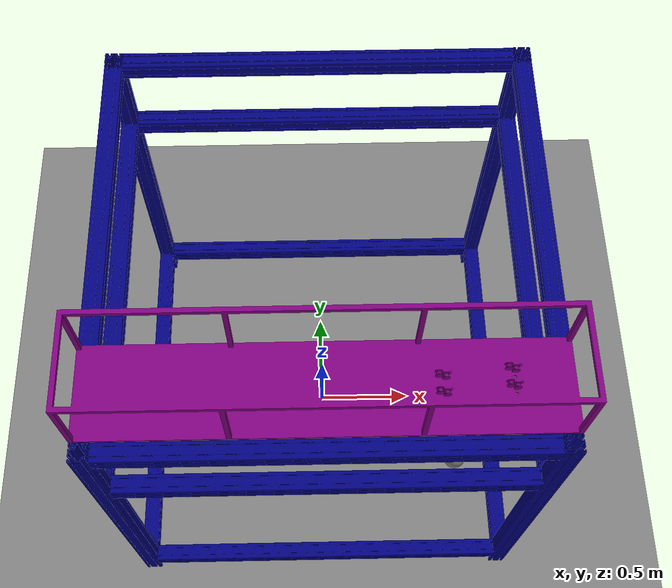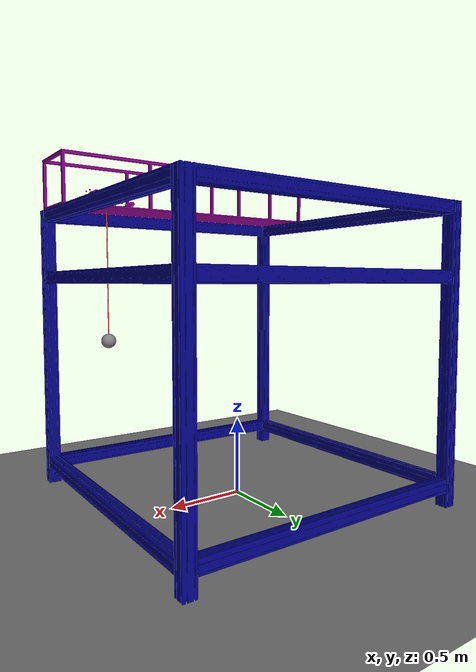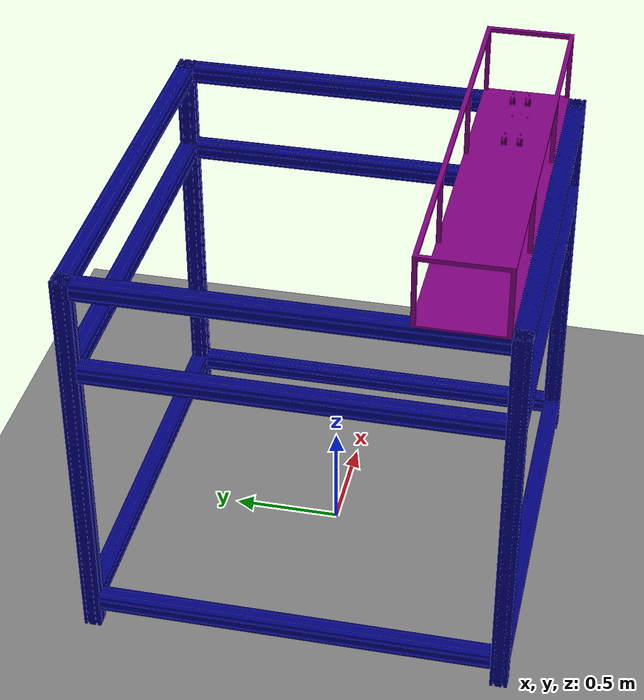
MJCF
<?xml version="1.0" encoding="utf-8"?>
<mujoco model="inverted_pendulum">
    <compiler angle="radian" meshdir="meshes" autolimits="true" />
    <option timestep="0.002" gravity="0 0 -9.81" wind="0 0 0" integrator="implicitfast"
        density="1.225"
        viscosity="1.8e-5" />

    <visual>
        <global realtime="1" />
        <quality shadowsize="16384" numslices="28" offsamples="4" />
        <headlight diffuse="1 1 1" specular="0.5 0.5 0.5" active="1" />
        <rgba fog="1 0 0 1" haze="1 1 1 1" />
    </visual>

    <asset>

        <texture name="plane" type="2d" builtin="checker" rgb1=".1 .1 .1" rgb2=".9 .9 .9"
            width="512" height="512" mark="cross" markrgb=".8 .8 .8" />
        <material name="plane" reflectance="0.3" texture="plane" texrepeat="1 1" texuniform="true" />
        <material name="box" rgba="0 0.5 0 1" emission="0" />

        <!-- gantry -->
        <mesh name="gantry - 8080-L1800-3_mesh" file="gantry - 8080-L1800-3.STL" scale="1 1 1"/>
        <mesh name="gantry - 8080-L1800-1_mesh" file="gantry - 8080-L1800-1.STL" scale="1 1 1"/>
        <mesh name="gantry - 8080-L1800-6_mesh" file="gantry - 8080-L1800-6.STL" scale="1 1 1"/>
        <mesh name="gantry - 8080-L1800-12_mesh" file="gantry - 8080-L1800-12.STL" scale="1 1 1"/>
        <mesh name="gantry - 8080-L1900-2_mesh" file="gantry - 8080-L1900-2.STL" scale="1 1 1"/>
        <mesh name="gantry - 8080-L1800-9_mesh" file="gantry - 8080-L1800-9.STL" scale="1 1 1"/>
        <mesh name="gantry - 8080-L1800-2_mesh" file="gantry - 8080-L1800-2.STL" scale="1 1 1"/>
        <mesh name="gantry - 8080-L1900-1_mesh" file="gantry - 8080-L1900-1.STL" scale="1 1 1"/>
        <mesh name="gantry - 8080-L1800-5_mesh" file="gantry - 8080-L1800-5.STL" scale="1 1 1"/>
        <mesh name="gantry - 8080-L1900-3_mesh" file="gantry - 8080-L1900-3.STL" scale="1 1 1"/>
        <mesh name="gantry - 8080-L1800-11_mesh" file="gantry - 8080-L1800-11.STL" scale="1 1 1"/>
        <mesh name="gantry - 8080-L1900-4_mesh" file="gantry - 8080-L1900-4.STL" scale="1 1 1"/>
        <mesh name="gantry - 8080-L1800-8_mesh" file="gantry - 8080-L1800-8.STL" scale="1 1 1"/>
        <mesh name="gantry - 8080-L1800-4_mesh" file="gantry - 8080-L1800-4.STL" scale="1 1 1"/>
        <mesh name="gantry - 8080-L1800-10_mesh" file="gantry - 8080-L1800-10.STL" scale="1 1 1"/>
        <mesh name="gantry - 8080-L1800-7_mesh" file="gantry - 8080-L1800-7.STL" scale="1 1 1"/>

        <!-- trolley -->
        <mesh name="trolley - pulley-2_mesh" file="trolley - pulley-2.STL" scale="1 1 1"/>
        <mesh name="trolley - trolley_plane-1_mesh" file="trolley - trolley_plane-1.STL" scale="1 1 1"/>
        <mesh name="trolley - trolley_anchor_ball-2_mesh" file="trolley - trolley_anchor_ball-2.STL" scale="1 1 1"/>
        <mesh name="trolley - pulley-6_mesh" file="trolley - pulley-6.STL" scale="1 1 1"/>
        <mesh name="trolley - trolley_anchor_ball-3_mesh" file="trolley - trolley_anchor_ball-3.STL" scale="1 1 1"/>
        <mesh name="trolley - trolley_anchor_ball-4_mesh" file="trolley - trolley_anchor_ball-4.STL" scale="1 1 1"/>
        <mesh name="trolley - pulley-8_mesh" file="trolley - pulley-8.STL" scale="1 1 1"/>
        <mesh name="trolley - pulley-4_mesh" file="trolley - pulley-4.STL" scale="1 1 1"/>
        <mesh name="trolley - pulley-3_mesh" file="trolley - pulley-3.STL" scale="1 1 1"/>
        <mesh name="trolley - pulley-1_mesh" file="trolley - pulley-1.STL" scale="1 1 1"/>
        <mesh name="trolley - pulley-5_mesh" file="trolley - pulley-5.STL" scale="1 1 1"/>
        <mesh name="trolley - pulley-7_mesh" file="trolley - pulley-7.STL" scale="1 1 1"/>
        <mesh name="trolley - trolley_anchor_ball-1_mesh" file="trolley - trolley_anchor_ball-1.STL" scale="1 1 1"/>

        <!-- ball -->
        <mesh name="ball_mesh" file="ball.STL" scale="1 1 1"/>

    </asset>

    <default>
        <geom solref=".5e-4" solimp="0.9 0.99 1e-4" fluidcoef="0.5 0.25 0.5 2.0 1.0" />
        <default class="card">
            <geom type="mesh" mesh="card" mass="1.84e-4" fluidshape="ellipsoid" contype="0"
                conaffinity="0" />
        </default>
        <default class="collision">
            <geom type="box" mass="0" size="0.047 0.032 .00035" group="3" friction=".1" />
        </default>
    </default>

    <worldbody>
        <geom name="floor" pos="0 0 0" size="10 10 .1" type="plane" material="plane"
            condim="3" />
        <light directional="true" ambient=".3 .3 .3" pos="30 30 30" dir="0 -2 -1"
            diffuse=".5 .5 .5" specular=".5 .5 .5" />
            <body name="gantry" pos="0 0 0">
                <body name="part_00_gantry - 8080-L1800-3" pos="0 0 0" euler="0 0 0">
                    <geom name="geom_00_gantry - 8080-L1800-3" type="mesh" mesh="gantry - 8080-L1800-3_mesh" pos="0 0 0" mass="8.20643687132272" rgba="0.0 0 0.5 1"/>
                </body>
                <body name="part_01_gantry - 8080-L1800-1" pos="0 0 0" euler="0 0 0">
                    <geom name="geom_01_gantry - 8080-L1800-1" type="mesh" mesh="gantry - 8080-L1800-1_mesh" pos="0 0 0" mass="8.206436440465545" rgba="0.0 0 0.5 1"/>
                </body>
                <body name="part_02_gantry - 8080-L1800-6" pos="0 0 0" euler="0 0 0">
                    <geom name="geom_02_gantry - 8080-L1800-6" type="mesh" mesh="gantry - 8080-L1800-6_mesh" pos="0 0 0" mass="8.206435252381262" rgba="0.0 0 0.5 1"/>
                </body>
                <body name="part_03_gantry - 8080-L1800-12" pos="0 0 0" euler="0 0 0">
                    <geom name="geom_03_gantry - 8080-L1800-12" type="mesh" mesh="gantry - 8080-L1800-12_mesh" pos="0 0 0" mass="8.206435837031654" rgba="0.0 0 0.5 1"/>
                </body>
                <body name="part_04_gantry - 8080-L1900-2" pos="0 0 0" euler="0 0 0">
                    <geom name="geom_04_gantry - 8080-L1900-2" type="mesh" mesh="gantry - 8080-L1900-2_mesh" pos="0 0 0" mass="8.662366448847159" rgba="0.0 0 0.5 1"/>
                </body>
                <body name="part_05_gantry - 8080-L1800-9" pos="0 0 0" euler="0 0 0">
                    <geom name="geom_05_gantry - 8080-L1800-9" type="mesh" mesh="gantry - 8080-L1800-9_mesh" pos="0 0 0" mass="8.206435406205692" rgba="0.0 0 0.5 1"/>
                </body>
                <body name="part_06_gantry - 8080-L1800-2" pos="0 0 0" euler="0 0 0">
                    <geom name="geom_06_gantry - 8080-L1800-2" type="mesh" mesh="gantry - 8080-L1800-2_mesh" pos="0 0 0" mass="8.20643687132272" rgba="0.0 0 0.5 1"/>
                </body>
                <body name="part_07_gantry - 8080-L1900-1" pos="0 0 0" euler="0 0 0">
                    <geom name="geom_07_gantry - 8080-L1900-1" type="mesh" mesh="gantry - 8080-L1900-1_mesh" pos="0 0 0" mass="8.662366448847159" rgba="0.0 0 0.5 1"/>
                </body>
                <body name="part_08_gantry - 8080-L1800-5" pos="0 0 0" euler="0 0 0">
                    <geom name="geom_08_gantry - 8080-L1800-5" type="mesh" mesh="gantry - 8080-L1800-5_mesh" pos="0 0 0" mass="8.206434821520842" rgba="0.0 0 0.5 1"/>
                </body>
                <body name="part_09_gantry - 8080-L1900-3" pos="0 0 0" euler="0 0 0">
                    <geom name="geom_09_gantry - 8080-L1900-3" type="mesh" mesh="gantry - 8080-L1900-3_mesh" pos="0 0 0" mass="8.662366448847159" rgba="0.0 0 0.5 1"/>
                </body>
                <body name="part_10_gantry - 8080-L1800-11" pos="0 0 0" euler="0 0 0">
                    <geom name="geom_10_gantry - 8080-L1800-11" type="mesh" mesh="gantry - 8080-L1800-11_mesh" pos="0 0 0" mass="8.206435406205692" rgba="0.0 0 0.5 1"/>
                </body>
                <body name="part_11_gantry - 8080-L1900-4" pos="0 0 0" euler="0 0 0">
                    <geom name="geom_11_gantry - 8080-L1900-4" type="mesh" mesh="gantry - 8080-L1900-4_mesh" pos="0 0 0" mass="8.662366448847159" rgba="0.0 0 0.5 1"/>
                </body>
                <body name="part_12_gantry - 8080-L1800-8" pos="0 0 0" euler="0 0 0">
                    <geom name="geom_12_gantry - 8080-L1800-8" type="mesh" mesh="gantry - 8080-L1800-8_mesh" pos="0 0 0" mass="8.206435252381262" rgba="0.0 0 0.5 1"/>
                </body>
                <body name="part_13_gantry - 8080-L1800-4" pos="0 0 0" euler="0 0 0">
                    <geom name="geom_13_gantry - 8080-L1800-4" type="mesh" mesh="gantry - 8080-L1800-4_mesh" pos="0 0 0" mass="8.206436440465545" rgba="0.0 0 0.5 1"/>
                </body>
                <body name="part_14_gantry - 8080-L1800-10" pos="0 0 0" euler="0 0 0">
                    <geom name="geom_14_gantry - 8080-L1800-10" type="mesh" mesh="gantry - 8080-L1800-10_mesh" pos="0 0 0" mass="8.206435837031654" rgba="0.0 0 0.5 1"/>
                </body>
                <body name="part_15_gantry - 8080-L1800-7" pos="0 0 0" euler="0 0 0">
                    <geom name="geom_15_gantry - 8080-L1800-7" type="mesh" mesh="gantry - 8080-L1800-7_mesh" pos="0 0 0" mass="8.206434821520842" rgba="0.0 0 0.5 1"/>
                </body>

                <body name="trolley" pos="0 -0.7 1.9">
                    <joint type="slide" name="trolley_joint" pos="0 0 0" axis="0 1 0" damping="0.5"
                        frictionloss="0.01" stiffness="0" range="-0.1 1.5" />
                    <body name="part_00_trolley - pulley-2" pos="0 0 0" euler="0 0 0">
                        <geom name="geom_00_trolley - pulley-2" type="mesh" mesh="trolley - pulley-2_mesh" pos="0 0 0" mass="0.027111797859617568" rgba="0.5 0 0.5 1"/>
                    </body>
                    <body name="part_01_trolley - trolley_plane-1" pos="0 0 0" euler="0 0 0">
                        <geom name="geom_01_trolley - trolley_plane-1" type="mesh" mesh="trolley - trolley_plane-1_mesh" pos="0 0 0" mass="28.76275760652507" rgba="0.5 0 0.5 1"/>
                    </body>
                    <body name="part_02_trolley - trolley_anchor_ball-2" pos="0 0 0" euler="0 0 0">
                        <geom name="geom_02_trolley - trolley_anchor_ball-2" type="mesh" mesh="trolley - trolley_anchor_ball-2_mesh" pos="0 0 0" mass="0.0014100498050014054" rgba="0.5 0 0.5 1"/>
                    </body>
                    <body name="part_03_trolley - pulley-6" pos="0 0 0" euler="0 0 0">
                        <geom name="geom_03_trolley - pulley-6" type="mesh" mesh="trolley - pulley-6_mesh" pos="0 0 0" mass="0.02711179618761414" rgba="0.5 0 0.5 1"/>
                    </body>
                    <body name="part_04_trolley - trolley_anchor_ball-3" pos="0 0 0" euler="0 0 0">
                        <geom name="geom_04_trolley - trolley_anchor_ball-3" type="mesh" mesh="trolley - trolley_anchor_ball-3_mesh" pos="0 0 0" mass="0.0014100497818406016" rgba="0.5 0 0.5 1"/>
                    </body>
                    <body name="part_05_trolley - trolley_anchor_ball-4" pos="0 0 0" euler="0 0 0">
                        <geom name="geom_05_trolley - trolley_anchor_ball-4" type="mesh" mesh="trolley - trolley_anchor_ball-4_mesh" pos="0 0 0" mass="0.001410049782437572" rgba="0.5 0 0.5 1"/>
                    </body>
                    <body name="part_06_trolley - pulley-8" pos="0 0 0" euler="0 0 0">
                        <geom name="geom_06_trolley - pulley-8" type="mesh" mesh="trolley - pulley-8_mesh" pos="0 0 0" mass="0.02711179284545186" rgba="0.5 0 0.5 1"/>
                    </body>
                    <body name="part_07_trolley - pulley-4" pos="0 0 0" euler="0 0 0">
                        <geom name="geom_07_trolley - pulley-4" type="mesh" mesh="trolley - pulley-4_mesh" pos="0 0 0" mass="0.027111794590652136" rgba="0.5 0 0.5 1"/>
                    </body>
                    <body name="part_08_trolley - pulley-3" pos="0 0 0" euler="0 0 0">
                        <geom name="geom_08_trolley - pulley-3" type="mesh" mesh="trolley - pulley-3_mesh" pos="0 0 0" mass="0.027111794594472015" rgba="0.5 0 0.5 1"/>
                    </body>
                    <body name="part_09_trolley - pulley-1" pos="0 0 0" euler="0 0 0">
                        <geom name="geom_09_trolley - pulley-1" type="mesh" mesh="trolley - pulley-1_mesh" pos="0 0 0" mass="0.027111797863437353" rgba="0.5 0 0.5 1"/>
                    </body>
                    <body name="part_10_trolley - pulley-5" pos="0 0 0" euler="0 0 0">
                        <geom name="geom_10_trolley - pulley-5" type="mesh" mesh="trolley - pulley-5_mesh" pos="0 0 0" mass="0.027111796191433887" rgba="0.5 0 0.5 1"/>
                    </body>
                    <body name="part_11_trolley - pulley-7" pos="0 0 0" euler="0 0 0">
                        <geom name="geom_11_trolley - pulley-7" type="mesh" mesh="trolley - pulley-7_mesh" pos="0 0 0" mass="0.02711179284927182" rgba="0.5 0 0.5 1"/>
                    </body>
                    <body name="part_12_trolley - trolley_anchor_ball-1" pos="0 0 0" euler="0 0 0">
                        <geom name="geom_12_trolley - trolley_anchor_ball-1" type="mesh" mesh="trolley - trolley_anchor_ball-1_mesh" pos="0 0 0" mass="0.0014100498021130147" rgba="0.5 0 0.5 1"/>
                    </body>
                    <site name="anchor_trolley" pos="0.61 0 0" size="0.01" rgba="0 1.0 0.8 0.5" />
                </body>
            </body>

            <body name="ball" pos="0.61 -0.7 1">
                <freejoint name="ball_freejoint" />
                <geom name="geom_00_ball" type="mesh" mesh="ball_mesh" pos="0 0 0" mass="1.4100500004232115" rgba="0.5 0.5 0.5 1"/>
                <site name="anchor_ball" pos="0 0 0" size="0.01" rgba="0 1.0 0.8 0.5" />
            </body>

    </worldbody>

    <equality>
        <tendon tendon1="tendon1" polycoef="0 1 0 0 0" />
    </equality>

    <tendon>
        <spatial name="tendon1" width="0.004" rgba="0.95 0.3 0.3 1">
            <site site="anchor_trolley" />
            <site site="anchor_ball" />
        </spatial>
    </tendon>

    <actuator>
        <position name="trolley_driver" kp="20" kv="25" joint="trolley_joint" ctrlrange="-0.1 1.5" />
    </actuator>
</mujoco>
